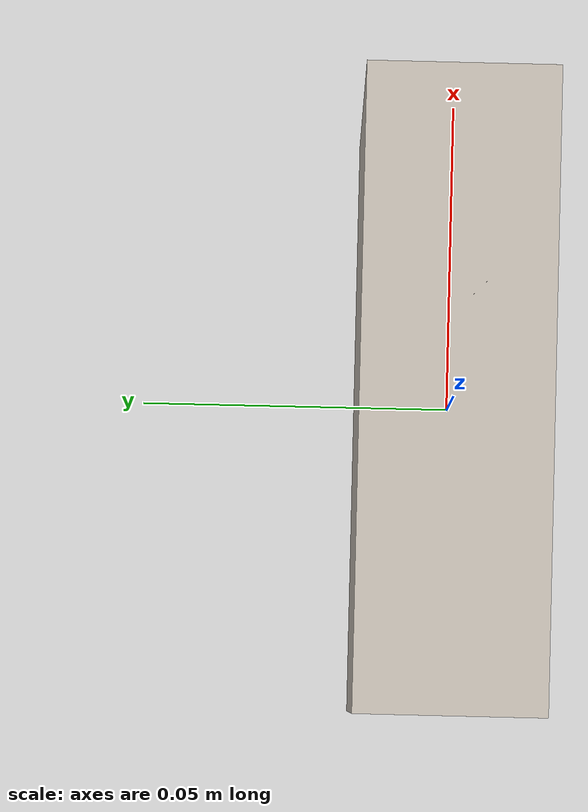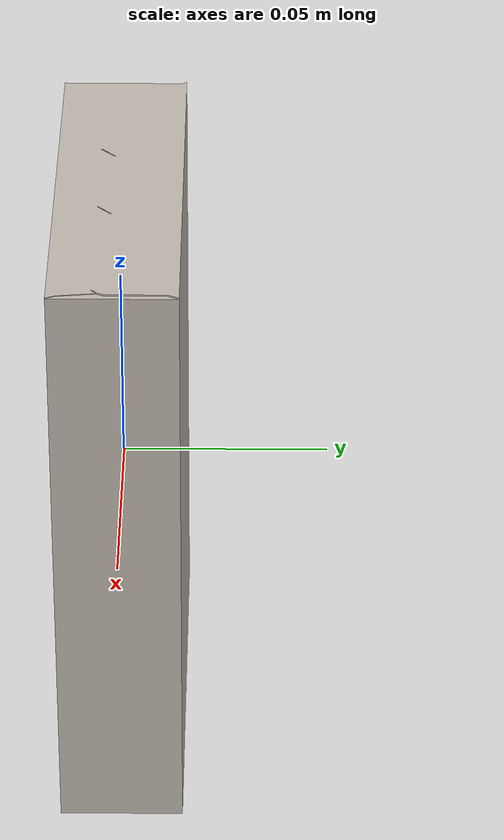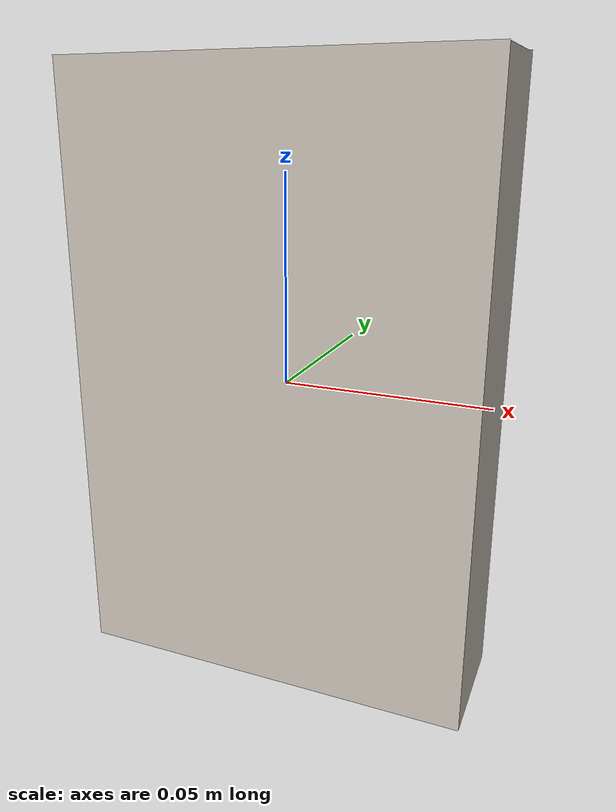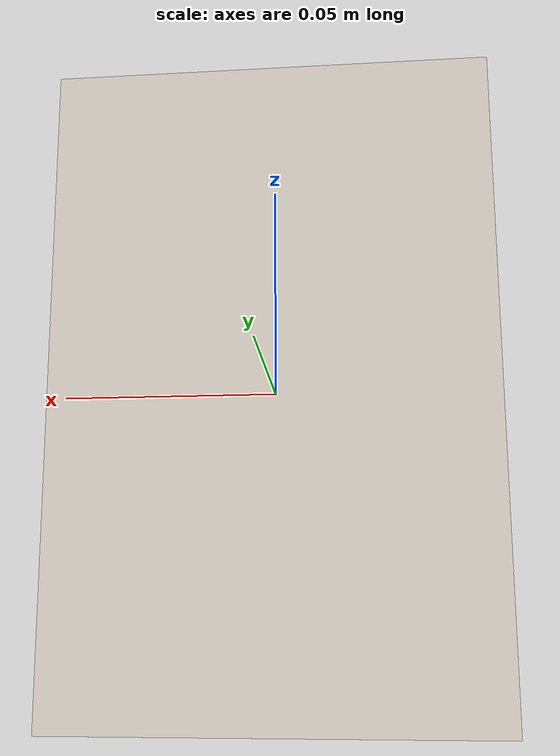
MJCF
<mujoco model="cereal">
  <asset>
    <mesh file="meshes/cereal.msh" name="cereal_mesh"/>
    <texture type="2d" file="../textures/cereal.png" rgb1="1 1 1" name="tex-cereal"/>
    <material name="cereal" reflectance="0.5" texrepeat="1 1" texture="tex-cereal" texuniform="false"/>
  </asset>
  <worldbody>
    <body>
      <body name="object">
        <geom pos="0 0 0" mesh="cereal_mesh" type="mesh" solimp="0.998 0.998 0.001" solref="0.001 1" density="150" friction="0.95 0.3 0.1" material="cereal" group="0" condim="4"/>
      </body>
      <site rgba="0 0 0 0" size="0.005" pos="0 0 -0.10" name="bottom_site"/>
      <site rgba="0 0 0 0" size="0.005" pos="0 0 0.03" name="top_site"/>
      <site rgba="0 0 0 0" size="0.005" pos="0.04 0.03 0" name="horizontal_radius_site"/>
    </body>
  </worldbody>
</mujoco>
